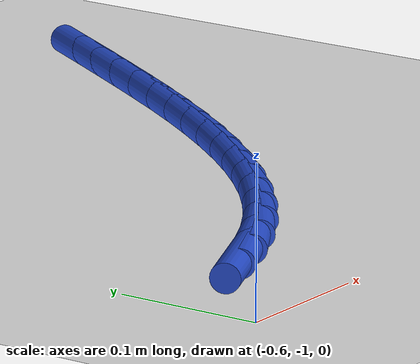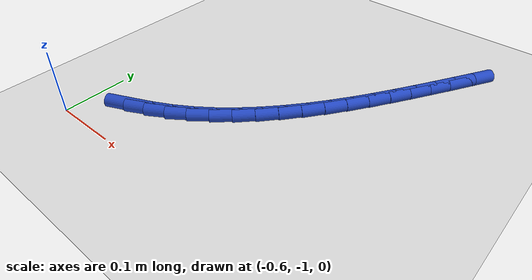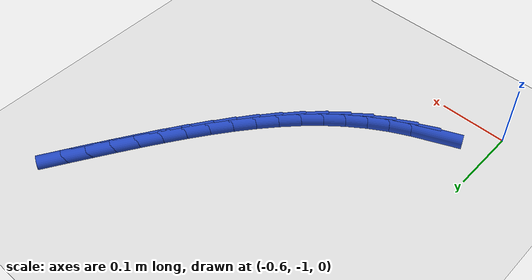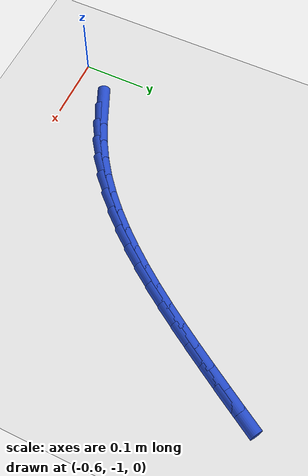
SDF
<sdf version="1.6">
 <world name="default">
  <model name="ground_plane">
   <static>1</static>
   <link name="link">
    <collision name="collision">
     <geometry><plane><normal>0 0 1</normal><size>100 100</size></plane></geometry>
     <surface><friction><ode><mu>100</mu><mu2>50</mu2></ode></friction></surface>
    </collision>
    <visual name="visual">
     <cast_shadows>0</cast_shadows>
     <geometry><plane><normal>0 0 1</normal><size>100 100</size></plane></geometry>
     <material>
      <script><uri>file://media/materials/scripts/gazebo.material</uri><name>Gazebo/WhiteGlow</name></script>
     </material>
    </visual>
   </link>
  </model>
  <model name="line">
   <link name="link_166">
    <pose>-0.5258063562115741 -0.9349894256535601 0.01 0 1.57 0.40805019912970686</pose>
    <collision name="collision">
     <geometry><cylinder><radius>0.01</radius><length>0.08</length></cylinder></geometry>
    </collision>
    <visual name="visual">
     <material>
      <script><name>Gazebo/Blue</name><uri>file://media/materials/scripts/gazebo.material</uri></script>
     </material>
     <geometry><cylinder><radius>0.01</radius><length>0.08</length></cylinder></geometry>
    </visual>
   </link>
   <link name="link_167">
    <pose>-0.49624834821397723 -0.9222110543064402 0.01 0 1.57 0.47161426730728684</pose>
    <collision name="collision">
     <geometry><cylinder><radius>0.01</radius><length>0.08</length></cylinder></geometry>
    </collision>
    <visual name="visual">
     <material>
      <script><name>Gazebo/Blue</name><uri>file://media/materials/scripts/gazebo.material</uri></script>
     </material>
     <geometry><cylinder><radius>0.01</radius><length>0.08</length></cylinder></geometry>
    </visual>
   </link>
   <link name="link_168">
    <pose>-0.467792772030939 -0.9076987570868948 0.01 0 1.57 0.5458608653152879</pose>
    <collision name="collision">
     <geometry><cylinder><radius>0.01</radius><length>0.08</length></cylinder></geometry>
    </collision>
    <visual name="visual">
     <material>
      <script><name>Gazebo/Blue</name><uri>file://media/materials/scripts/gazebo.material</uri></script>
     </material>
     <geometry><cylinder><radius>0.01</radius><length>0.08</length></cylinder></geometry>
    </visual>
   </link>
   <link name="link_169">
    <pose>-0.4406054880574999 -0.8911845328203616 0.01 0 1.57 0.6220939581441431</pose>
    <collision name="collision">
     <geometry><cylinder><radius>0.01</radius><length>0.08</length></cylinder></geometry>
    </collision>
    <visual name="visual">
     <material>
      <script><name>Gazebo/Blue</name><uri>file://media/materials/scripts/gazebo.material</uri></script>
     </material>
     <geometry><cylinder><radius>0.01</radius><length>0.08</length></cylinder></geometry>
    </visual>
   </link>
   <link name="link_170">
    <pose>-0.41472363480475977 -0.8726253049293163 0.01 0 1.57 0.6917240444561512</pose>
    <collision name="collision">
     <geometry><cylinder><radius>0.01</radius><length>0.08</length></cylinder></geometry>
    </collision>
    <visual name="visual">
     <material>
      <script><name>Gazebo/Blue</name><uri>file://media/materials/scripts/gazebo.material</uri></script>
     </material>
     <geometry><cylinder><radius>0.01</radius><length>0.08</length></cylinder></geometry>
    </visual>
   </link>
   <link name="link_171">
    <pose>-0.39005897289800384 -0.8521970782354557 0.01 0 1.57 0.7541121966960278</pose>
    <collision name="collision">
     <geometry><cylinder><radius>0.01</radius><length>0.08</length></cylinder></geometry>
    </collision>
    <visual name="visual">
     <material>
      <script><name>Gazebo/Blue</name><uri>file://media/materials/scripts/gazebo.material</uri></script>
     </material>
     <geometry><cylinder><radius>0.01</radius><length>0.08</length></cylinder></geometry>
    </visual>
   </link>
   <link name="link_172">
    <pose>-0.3665180664849329 -0.830084937723003 0.01 0 1.57 0.8092519522268575</pose>
    <collision name="collision">
     <geometry><cylinder><radius>0.01</radius><length>0.08</length></cylinder></geometry>
    </collision>
    <visual name="visual">
     <material>
      <script><name>Gazebo/Blue</name><uri>file://media/materials/scripts/gazebo.material</uri></script>
     </material>
     <geometry><cylinder><radius>0.01</radius><length>0.08</length></cylinder></geometry>
    </visual>
   </link>
   <link name="link_173">
    <pose>-0.3440074797132471 -0.806473968376181 0.01 0 1.57 0.8573409765615859</pose>
    <collision name="collision">
     <geometry><cylinder><radius>0.01</radius><length>0.08</length></cylinder></geometry>
    </collision>
    <visual name="visual">
     <material>
      <script><name>Gazebo/Blue</name><uri>file://media/materials/scripts/gazebo.material</uri></script>
     </material>
     <geometry><cylinder><radius>0.01</radius><length>0.08</length></cylinder></geometry>
    </visual>
   </link>
   <link name="link_174">
    <pose>-0.322433776730647 -0.7815492551792127 0.01 0 1.57 0.898692550051159</pose>
    <collision name="collision">
     <geometry><cylinder><radius>0.01</radius><length>0.08</length></cylinder></geometry>
    </collision>
    <visual name="visual">
     <material>
      <script><name>Gazebo/Blue</name><uri>file://media/materials/scripts/gazebo.material</uri></script>
     </material>
     <geometry><cylinder><radius>0.01</radius><length>0.08</length></cylinder></geometry>
    </visual>
   </link>
   <link name="link_175">
    <pose>-0.30170352168483316 -0.7554958831163219 0.01 0 1.57 0.9336660927081991</pose>
    <collision name="collision">
     <geometry><cylinder><radius>0.01</radius><length>0.08</length></cylinder></geometry>
    </collision>
    <visual name="visual">
     <material>
      <script><name>Gazebo/Blue</name><uri>file://media/materials/scripts/gazebo.material</uri></script>
     </material>
     <geometry><cylinder><radius>0.01</radius><length>0.08</length></cylinder></geometry>
    </visual>
   </link>
   <link name="link_176">
    <pose>-0.28172327872350605 -0.7284989371717311 0.01 0 1.57 0.9626171728566632</pose>
    <collision name="collision">
     <geometry><cylinder><radius>0.01</radius><length>0.08</length></cylinder></geometry>
    </collision>
    <visual name="visual">
     <material>
      <script><name>Gazebo/Blue</name><uri>file://media/materials/scripts/gazebo.material</uri></script>
     </material>
     <geometry><cylinder><radius>0.01</radius><length>0.08</length></cylinder></geometry>
    </visual>
   </link>
   <link name="link_177">
    <pose>-0.262399611994366 -0.7007435023296635 0.01 0 1.57 0.9858637154486813</pose>
    <collision name="collision">
     <geometry><cylinder><radius>0.01</radius><length>0.08</length></cylinder></geometry>
    </collision>
    <visual name="visual">
     <material>
      <script><name>Gazebo/Blue</name><uri>file://media/materials/scripts/gazebo.material</uri></script>
     </material>
     <geometry><cylinder><radius>0.01</radius><length>0.08</length></cylinder></geometry>
    </visual>
   </link>
   <link name="link_178">
    <pose>-0.24363908564511363 -0.6724146635743421 0.01 0 1.57 1.0036640311730218</pose>
    <collision name="collision">
     <geometry><cylinder><radius>0.01</radius><length>0.08</length></cylinder></geometry>
    </collision>
    <visual name="visual">
     <material>
      <script><name>Gazebo/Blue</name><uri>file://media/materials/scripts/gazebo.material</uri></script>
     </material>
     <geometry><cylinder><radius>0.01</radius><length>0.08</length></cylinder></geometry>
    </visual>
   </link>
   <link name="link_179">
    <pose>-0.22534826382344933 -0.64369750588999 0.01 0 1.57 1.0162025655339468</pose>
    <collision name="collision">
     <geometry><cylinder><radius>0.01</radius><length>0.08</length></cylinder></geometry>
    </collision>
    <visual name="visual">
     <material>
      <script><name>Gazebo/Blue</name><uri>file://media/materials/scripts/gazebo.material</uri></script>
     </material>
     <geometry><cylinder><radius>0.01</radius><length>0.08</length></cylinder></geometry>
    </visual>
   </link>
   <link name="link_180">
    <pose>-0.20743371067707359 -0.6147771142608304 0.01 0 1.57 1.023580522191308</pose>
    <collision name="collision">
     <geometry><cylinder><radius>0.01</radius><length>0.08</length></cylinder></geometry>
    </collision>
    <visual name="visual">
     <material>
      <script><name>Gazebo/Blue</name><uri>file://media/materials/scripts/gazebo.material</uri></script>
     </material>
     <geometry><cylinder><radius>0.01</radius><length>0.08</length></cylinder></geometry>
    </visual>
   </link>
   <link name="link_181">
    <pose>-0.18980200084848325 -0.585838560600459 0.01 0 1.57 1.0276648877911043</pose>
    <collision name="collision">
     <geometry><cylinder><radius>0.01</radius><length>0.08</length></cylinder></geometry>
    </collision>
    <visual name="visual">
     <material>
      <script><name>Gazebo/Blue</name><uri>file://media/materials/scripts/gazebo.material</uri></script>
     </material>
     <geometry><cylinder><radius>0.01</radius><length>0.08</length></cylinder></geometry>
    </visual>
   </link>
   <link name="link_182">
    <pose>-0.1724013878697313 -0.5570150083137224 0.01 0 1.57 1.0345355079685552</pose>
    <collision name="collision">
     <geometry><cylinder><radius>0.01</radius><length>0.08</length></cylinder></geometry>
    </collision>
    <visual name="visual">
     <material>
      <script><name>Gazebo/Blue</name><uri>file://media/materials/scripts/gazebo.material</uri></script>
     </material>
     <geometry><cylinder><radius>0.01</radius><length>0.08</length></cylinder></geometry>
    </visual>
   </link>
  </model>
 </world>
</sdf>
